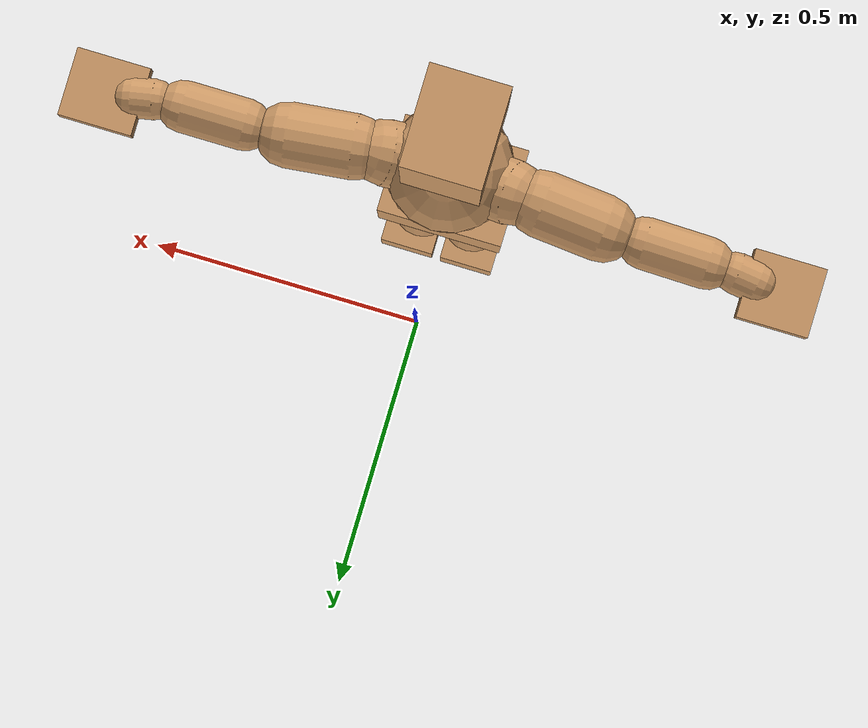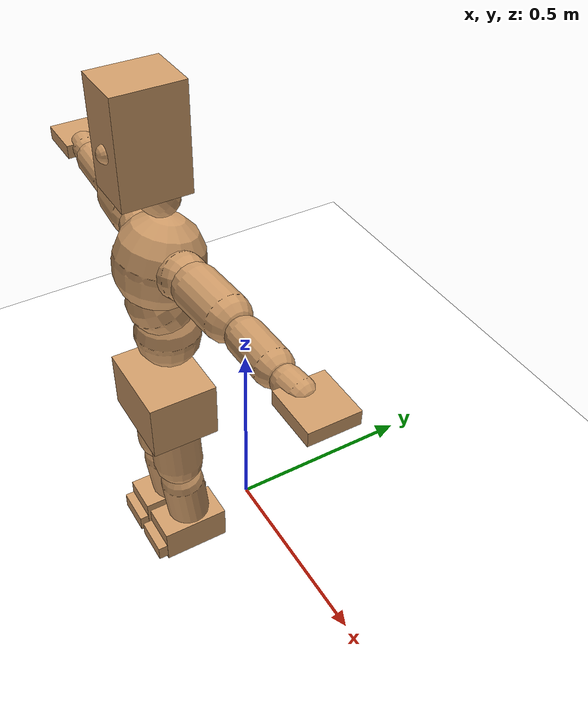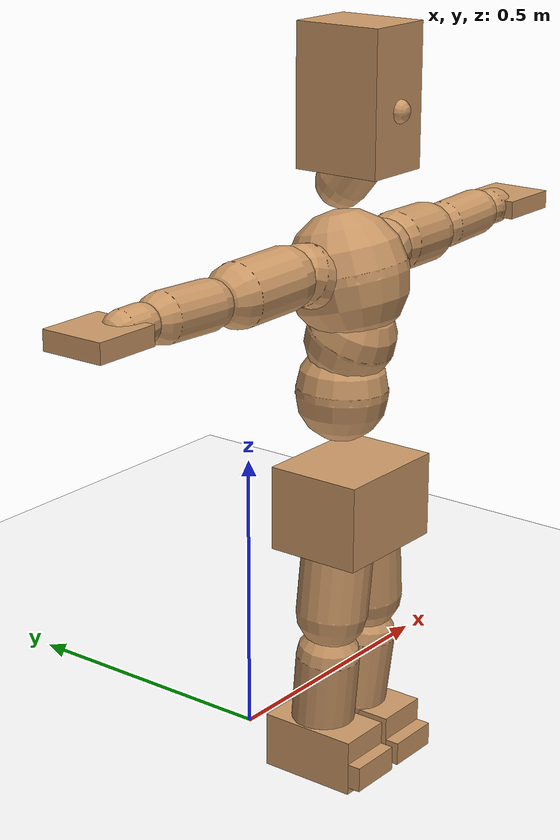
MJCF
<mujoco model="humanoid">
  <option integrator="implicitfast" />

  <visual>
    <global offwidth="1280" offheight="960" />
    <headlight active="1" ambient="0.34 0.34 0.34" diffuse="0.5 0.5 0.5" />
  </visual>

  <default>
    <joint damping="2" stiffness="2" armature="0.01" limited="true" solimplimit="0 .99 .01" />
    <geom condim="1" friction="0.7 0.005 0.0001" solimp=".99 .99 .003" solref="0.015 1" margin="0.001" rgba="0.8 0.6 .4 1" />
    <default class="smplcontact">
      <geom condim="3" friction="1. 0.005 0.0001" solref="0.015 1" solimp="0.98 0.98 0.001" priority="1" />
    </default>
    <default class="stiff_medium">
      <joint stiffness="10" />
    </default>
    <default class="stiff_medium_higher">
      <joint stiffness="50" />
    </default>
    <default class="stiff_high">
      <joint stiffness="100" />
    </default>
  </default>

  <asset>
    <texture type="skybox" builtin="gradient" rgb1="0.99 0.99 0.99" rgb2="0.608 0.828 0.892" width="100" />
    <texture builtin="flat" height="1278" mark="cross" markrgb="1 1 1" name="texgeom" random="0.01" rgb1="0.8 0.6 0.4" rgb2="0.8 0.6 0.4" type="cube" width="127" />
    <texture name="texplane" type="2d" builtin="checker" markrgb="1 1 1" rgb1="0.756 0.772 0.76" rgb2="0.6 0.6 0.6" width="100" height="100" />
    <material name="MatPlane" reflectance="0.5" texture="texplane" texrepeat="1 1" texuniform="true" />
    <material name="geom" texture="texgeom" texuniform="true" />
  </asset>

  <worldbody>
    <light name="tracking_light" pos="0 0 7" dir="0 0 -1" directional="true" cutoff="100" exponent="1" diffuse="1 1 1" specular="0.1 0.1 0.1" mode="trackcom" />
    <camera name="back" pos="0 3 2.4" xyaxes="-1 0 0 0 -1 2" mode="trackcom" />
    <camera name="side" pos="-3 0 2.4" xyaxes="0 -1 0 1 0 2" mode="trackcom" />
    <camera name="front_side" pos="-2.8 -2.8 0.8" xyaxes="0.5 -0.5 0 0.1 0.1 1" mode="trackcom" />
    <geom condim="3" name="floor" pos="0 0 0" rgba="1 1 1 1" size="100 100 .2" type="plane" material="MatPlane" />
    <body name="Pelvis" pos="-0.0018 -0.2233 0.49225" euler="90 0 0">
      <site name="Pelvis" size="0.01" />
      <freejoint name="Pelvis" />
      <geom type="box" pos="-0.0000 -0.0121 -0.0055" size="0.1069 0.0722 0.083" quat="1.0000 0.0000 0.0000 0.0000" density="3165.830099" name="Pelvis" />
      <body name="L_Hip" pos="0.03475 -0.0457 -0.0034">
        <joint name="L_Hip_x" type="hinge" pos="0 0 0" axis="1 0 0" stiffness="3.3281267346938783" range="-160.0 22.92" class="stiff_medium" damping="3.7390012674465325" armature="0.001866933509102771"/>
        <joint name="L_Hip_y" type="hinge" pos="0 0 0" axis="0 1 0" stiffness="3.37791" range="-70.0 70.0" class="stiff_medium" damping="4.005630916019097" armature="0.004750001934737157"/>
        <joint name="L_Hip_z" type="hinge" pos="0 0 0" axis="0 0 1" stiffness="3.3736477551020405" range="-28.65 90.0" class="stiff_medium" damping="2.5063841398267126" armature="0.0018620679787552054"/>
        <geom type="capsule" density="2040.816327" fromto="0.00345 -0.0375 -0.00045 0.0137 -0.1501 -0.0018" size="0.0615" name="L_Hip" />
        <body name="L_Knee" pos="0.01715 -0.1876 -0.00225">
          <joint name="L_Knee_x" type="hinge" pos="0 0 0" axis="1 0 0" range="-5.16 171.89" damping="2.2341138163124654" armature="0.002158215061835116" stiffness="0.7227130408163265"/>
          <joint name="L_Knee_y" type="hinge" pos="0 0 0" axis="0 1 0" range="-4.58 6.88" damping="3.4591258985845013" armature="0.005422024016158549" stiffness="0.6896382205818496"/>
          <joint name="L_Knee_z" type="hinge" pos="0 0 0" axis="0 0 1" range="-6.88 4.58" damping="2.248338952702008" armature="0.002131189565119327" stiffness="0.7412274770408163"/>
          <geom type="capsule" density="1234.567901" fromto="-0.00135 -0.0398 -0.00435 -0.00545 -0.1592 -0.0175" size="0.0541" name="L_Knee" />
          <body name="L_Ankle" pos="-0.0068 -0.199 -0.02185">
            <joint name="L_Ankle_x" type="hinge" pos="0 0 0" axis="1 0 0" range="-45.84 45.84" class="stiff_medium" damping="3.0200432285450516" armature="0.005067033945711566" stiffness="5.0"/>
            <joint name="L_Ankle_y" type="hinge" pos="0 0 0" axis="0 1 0" range="-74.48 22.92" class="stiff_medium" damping="1.537123292382135" armature="0.005250551146630431" stiffness="5.0"/>
            <joint name="L_Ankle_z" type="hinge" pos="0 0 0" axis="0 0 1" range="-4.58 4.58" class="stiff_medium" damping="3.407863702828024" armature="0.00645196389836263" stiffness="5.0"/>
            <geom type="box" pos="0.01165 -0.01195 0.0121" size="0.0483 0.0464 0.085" quat="1.0000 0.0000 0.0000 0.0000" density="449.071558" name="L_Ankle" class="smplcontact" />
            <body name="L_Toe" pos="0.0132 -0.0279 0.05965">
              <joint name="L_Toe_x" type="hinge" pos="0 0 0" axis="1 0 0" range="-91.67 22.92" armature="0.007148590664291283" damping="1.1957082139294086" stiffness="1.0"/>
              <joint name="L_Toe_y" type="hinge" pos="0 0 0" axis="0 1 0" range="-4.58 4.58" armature="0.007990951927082678" damping="1.2641955487251706" stiffness="1.0"/>
              <joint name="L_Toe_z" type="hinge" pos="0 0 0" axis="0 0 1" range="-4.58 4.58" armature="0.009694161060559706" damping="1.3924195531921912" stiffness="1.0"/>
              <geom type="box" pos="-0.0015 0.00275 0.0124" size="0.0478 0.02 0.0496" quat="1.0000 0.0000 0.0000 0.0000" density="423.206892" name="L_Toe" class="smplcontact" />
            </body>
          </body>
        </body>
      </body>
      <body name="R_Hip" pos="-0.03385 -0.04525 -0.00215">
        <joint name="R_Hip_x" type="hinge" pos="0 0 0" axis="1 0 0" stiffness="3.3281267346938783" range="-160.0 22.92" class="stiff_medium" damping="3.7390012674465325" armature="0.001866933509102771"/>
        <joint name="R_Hip_y" type="hinge" pos="0 0 0" axis="0 1 0" stiffness="3.37791" range="-70.0 70.0" class="stiff_medium" damping="4.005630916019097" armature="0.004750001934737157"/>
        <joint name="R_Hip_z" type="hinge" pos="0 0 0" axis="0 0 1" stiffness="3.3736477551020405" range="-90.0 28.65" class="stiff_medium" damping="2.5063841398267126" armature="0.0018620679787552054"/>
        <geom type="capsule" density="2040.816327" fromto="-0.00385 -0.03825 -0.0009 -0.0153 -0.15305 -0.00355" size="0.0606" name="R_Hip" />
        <body name="R_Knee" pos="-0.01915 -0.1913 -0.00445">
          <joint name="R_Knee_x" type="hinge" pos="0 0 0" axis="1 0 0" range="-5.16 171.89" damping="2.2341138163124654" armature="0.002158215061835116" stiffness="0.7227130408163265"/>
          <joint name="R_Knee_y" type="hinge" pos="0 0 0" axis="0 1 0" range="-6.88 4.58" damping="3.4591258985845013" armature="0.005422024016158549" stiffness="0.6896382205818496"/>
          <joint name="R_Knee_z" type="hinge" pos="0 0 0" axis="0 0 1" range="-4.58 6.88" damping="2.248338952702008" armature="0.002131189565119327" stiffness="0.7412274770408163"/>
          <geom type="capsule" density="1234.567901" fromto="0.0016 -0.03985 -0.00425 0.0063 -0.15935 -0.0169" size="0.0541" name="R_Knee" />
          <body name="R_Ankle" pos="0.0079 -0.1992 -0.02115">
            <joint name="R_Ankle_x" type="hinge" pos="0 0 0" axis="1 0 0" range="-45.84 45.84" class="stiff_medium" damping="3.0200432285450516" armature="0.005067033945711566" stiffness="5.0"/>
            <joint name="R_Ankle_y" type="hinge" pos="0 0 0" axis="0 1 0" range="-22.92 74.48" class="stiff_medium" damping="1.537123292382135" armature="0.005250551146630431" stiffness="5.0"/>
            <joint name="R_Ankle_z" type="hinge" pos="0 0 0" axis="0 0 1" range="-4.58 4.58" class="stiff_medium" damping="3.407863702828024" armature="0.00645196389836263" stiffness="5.0"/>
            <geom type="box" pos="-0.0106 -0.0087 0.0128" size="0.0483 0.0478 0.0865" quat="1.0000 0.0000 0.0000 0.0000" density="434.700981" name="R_Ankle" class="smplcontact" />
            <body name="R_Toe" pos="-0.0127 -0.02405 0.06165">
              <joint name="R_Toe_x" type="hinge" pos="0 0 0" axis="1 0 0" range="-91.67 22.92" armature="0.007148590664291283" damping="1.1957082139294086" stiffness="1.0"/>
              <joint name="R_Toe_y" type="hinge" pos="0 0 0" axis="0 1 0" range="-4.58 4.58" armature="0.007990951927082678" damping="1.2641955487251706" stiffness="1.0"/>
              <joint name="R_Toe_z" type="hinge" pos="0 0 0" axis="0 0 1" range="-4.58 4.58" armature="0.009694161060559706" damping="1.3924195531921912" stiffness="1.0"/>
              <geom type="box" pos="0.0021 0.00225 0.01135" size="0.0479 0.0216 0.0493" quat="1.0000 0.0000 0.0000 0.0000" density="407.384095" name="R_Toe" class="smplcontact" />
            </body>
          </body>
        </body>
      </body>
      <body name="Torso" pos="-0.0025 0.109 -0.0267">
        <joint name="Torso_x" type="hinge" pos="0 0 0" axis="1 0 0" range="-25.78 57.3" class="stiff_medium" damping="13.296564125699916" armature="0.008717287887859705" stiffness="9.01394612244898"/>
        <joint name="Torso_y" type="hinge" pos="0 0 0" axis="0 1 0" range="-57.3 57.3" class="stiff_high" damping="11.857975578739207" armature="0.0038447211811141577" stiffness="91.43158775510203"/>
        <joint name="Torso_z" type="hinge" pos="0 0 0" axis="0 0 1" range="-34.38 34.38" class="stiff_high" damping="16.193220219297856" armature="0.007045583299802342" stiffness="93.0442413043478"/>
        <geom type="capsule" density="2040.816327" fromto="0.0025 0.0608 0.0005 0.003 0.0743 0.0006" size="0.0769" name="Torso" />
        <body name="Spine" pos="0.0055 0.1352 0.0011">
          <joint name="Spine_x" type="hinge" pos="0 0 0" axis="1 0 0" stiffness="8.855082083333333" range="-25.78 57.3" class="stiff_medium" damping="13.076797677454" armature="0.008582774445870424"/>
          <joint name="Spine_y" type="hinge" pos="0 0 0" axis="0 1 0" stiffness="8.966550425531915" range="-57.3 57.3" class="stiff_high" damping="4.670538649446805" armature="0.0038012687155206805"/>
          <joint name="Spine_z" type="hinge" pos="0 0 0" axis="0 0 1" stiffness="17.399179999999998" range="-34.38 34.38" class="stiff_high" damping="8.612389288095056" armature="0.005920876830729192"/>
          <geom type="capsule" density="2040.816327" fromto="0.0007 0.0238 0.0114 0.0008 0.0291 0.014" size="0.0755" name="Spine" />
          <body name="Chest" pos="0.0015 0.0529 0.0254">
            <joint name="Chest_x" type="hinge" pos="0 0 0" axis="1 0 0" stiffness="8.445605217391304" range="-25.78 57.3" class="stiff_medium" damping="12.725283601188018" armature="0.008521609816255434"/>
            <joint name="Chest_y" type="hinge" pos="0 0 0" axis="0 1 0" stiffness="7.416513142857141" range="-57.3 57.3" class="stiff_high" damping="4.235867490218071" armature="0.003780114777548562"/>
            <joint name="Chest_z" type="hinge" pos="0 0 0" axis="0 0 1" stiffness="17.461715111111108" range="-34.38 34.38" class="stiff_high" damping="8.265316118618488" armature="0.005433748608980236"/>
            <geom type="capsule" density="2040.816327" fromto="-0.0009 0.0682 -0.0173 -0.001 0.0833 -0.0212" size="0.1002" name="Chest" />
            <body name="Neck" pos="-0.0028 0.2139 -0.0429">
              <joint name="Neck_x" type="hinge" pos="0 0 0" axis="1 0 0" range="-28.65 57.3" class="stiff_medium_higher" damping="10.000000000000004" armature="0.01000000000000001" stiffness="50.0"/>
              <joint name="Neck_y" type="hinge" pos="0 0 0" axis="0 1 0" range="-40.11 40.11" class="stiff_medium_higher" damping="10.0" armature="0.01" stiffness="50.0"/>
              <joint name="Neck_z" type="hinge" pos="0 0 0" axis="0 0 1" range="-40.11 40.11" class="stiff_medium_higher" damping="9.999999999999996" armature="0.009999999999999993" stiffness="50.0"/>
              <geom type="capsule" density="1000" fromto="0.001 0.013 0.0103 0.0041 0.052 0.0411" size="0.0436" name="Neck" />
              <body name="Head" pos="0.0052 0.065 0.0513">
                <joint name="Head_x" type="hinge" pos="0 0 0" axis="1 0 0" range="-28.65 57.3" class="stiff_medium_higher" damping="2.0000000000000067" armature="0.01000000000000007" stiffness="50.0"/>
                <joint name="Head_y" type="hinge" pos="0 0 0" axis="0 1 0" range="-40.11 40.11" class="stiff_medium_higher" damping="1.9999999999999998" armature="0.009999999999999998" stiffness="50.0"/>
                <joint name="Head_z" type="hinge" pos="0 0 0" axis="0 0 1" range="-40.11 40.11" class="stiff_medium_higher" damping="2.0000000000000027" armature="0.01000000000000003" stiffness="50.0"/>
                <geom type="box" pos="-0.0042 0.0876 -0.0116" size="0.0606 0.1154 0.076" quat="1.0000 0.0000 0.0000 0.0000" density="1018.069894" name="Head" />
                <geom type="capsule" name="nose" size="0.02 0.01" pos="0 0.07 0.05" quat="1 0 0 0" mass="0" contype="0" conaffinity="0" />
              </body>
            </body>
            <body name="L_Thorax" pos="0.052205 0.0806262 -0.0225912">
              <joint name="L_Thorax_x" type="hinge" pos="0 0 0" axis="1 0 0" range="-10.89 4.58" class="stiff_medium_higher" damping="10.752161019344726" armature="0.005492534491244045" stiffness="26.310478061224497"/>
              <joint name="L_Thorax_y" type="hinge" pos="0 0 0" axis="0 1 0" range="-28.65 17.19" class="stiff_medium_higher" damping="8.656507675839675" armature="0.0035990909186137975" stiffness="26.025712755102038"/>
              <joint name="L_Thorax_z" type="hinge" pos="0 0 0" axis="0 0 1" range="-31.51 40.11" class="stiff_medium_higher" damping="8.654936190408645" armature="0.0035973494554525543" stiffness="26.02885867346939"/>
              <geom type="capsule" density="1000" fromto="0.0120575 0.00404125 -0.0011925 0.04823 0.016165 -0.00470375" size="0.0521" name="L_Thorax" />
              <body name="L_Shoulder" pos="0.0602875 0.0202062 -0.00589625">
                <joint name="L_Shoulder_x" type="hinge" pos="0 0 0" axis="1 0 0" range="-97.4 97.4" class="stiff_medium" damping="3.4355706113714604" armature="0.00618147417805881" stiffness="5.3039961224489796"/>
                <joint name="L_Shoulder_y" type="hinge" pos="0 0 0" axis="0 1 0" range="-108.86 80.21" class="stiff_medium" damping="2.619467278569037" armature="0.00364693025105719" stiffness="5.226319999999999"/>
                <joint name="L_Shoulder_z" type="hinge" pos="0 0 0" axis="0 0 1" range="-97.4 85.94" class="stiff_medium" damping="2.619734916927622" armature="0.0036444798930498415" stiffness="5.230902653061225"/>
                <geom type="capsule" density="1000" fromto="0.0343837 -0.0017225 -0.00364375 0.137601 -0.0067575 -0.014575" size="0.0517" name="L_Shoulder" />
                <body name="L_Elbow" pos="0.171985 -0.00848 -0.0182187">
                  <joint name="L_Elbow_x" type="hinge" pos="0 0 0" axis="1 0 0" range="-17.19 4.58" damping="3.1785577743547435" armature="0.007393662378869007" stiffness="1.0931772653061227"/>
                  <joint name="L_Elbow_y" type="hinge" pos="0 0 0" axis="0 1 0" range="-180.0 17.19" damping="2.3033030607353284" armature="0.003885042260915374" stiffness="1.0924370204081633"/>
                  <joint name="L_Elbow_z" type="hinge" pos="0 0 0" axis="0 0 1" range="-100.84 4.58" damping="2.3008114328593745" armature="0.0038721783452337244" stiffness="1.0936961632653062"/>
                  <geom type="capsule" density="1000" fromto="0.0329925 0.0011925 -0.0001325 0.132102 0.00477 -0.00059625" size="0.0405" name="L_Elbow" />
                  <body name="L_Wrist" pos="0.165095 0.0059625 -0.000795">
                    <joint name="L_Wrist_x" type="hinge" pos="0 0 0" axis="1 0 0" range="-180.0 22.92" armature="0.008001427855743294" damping="1.4109622696560111" stiffness="1.2440370408163264"/>
                    <joint name="L_Wrist_y" type="hinge" pos="0 0 0" axis="0 1 0" range="-17.19 17.19" armature="0.004879471429003496" damping="1.096564444697455" stiffness="1.2321555714285712"/>
                    <joint name="L_Wrist_z" type="hinge" pos="0 0 0" axis="0 0 1" range="-22.92 22.92" armature="0.004698864868438911" damping="1.0781698402208963" stiffness="1.2369478979591837"/>
                    <geom type="capsule" density="1000" fromto="0.01113 -0.00106 -0.0019875 0.04452 -0.00430625 -0.00795" size="0.0318" name="L_Wrist" class="smplcontact" />
                    <body name="L_Hand" pos="0.05565 -0.0054325 -0.00987125">
                      <joint name="L_Hand_x" type="hinge" pos="0 0 0" axis="1 0 0" range="-17.19 17.19" armature="0.0097555529962039" damping="1.6078618449167779" stiffness="1.3249990612244895"/>
                      <joint name="L_Hand_y" type="hinge" pos="0 0 0" axis="0 1 0" range="-51.57 51.57" armature="0.007043747166286172" damping="1.3662326477640545" stiffness="1.3249990408163264"/>
                      <joint name="L_Hand_z" type="hinge" pos="0 0 0" axis="0 0 1" range="-91.67 91.67" armature="0.006320878329522917" damping="1.2942300773617907" stiffness="1.3249989999999998"/>
                      <geom type="box" pos="0.0326612 0.0006625 -0.0038425" size="0.0585 0.0158 0.0538" quat="1.0000 0.0000 0.0000 0.0000" density="400.552564" name="L_Hand" class="smplcontact" />
                    </body>
                  </body>
                </body>
              </body>
            </body>
            <body name="R_Thorax" pos="-0.0541925 0.078705 -0.0255725">
              <joint name="R_Thorax_x" type="hinge" pos="0 0 0" axis="1 0 0" range="-10.89 4.58" class="stiff_medium_higher" damping="10.752161019344726" armature="0.005492534491244045" stiffness="26.310478061224497"/>
              <joint name="R_Thorax_y" type="hinge" pos="0 0 0" axis="0 1 0" range="-17.19 28.65" class="stiff_medium_higher" damping="8.656507675839675" armature="0.0035990909186137975" stiffness="26.025712755102038"/>
              <joint name="R_Thorax_z" type="hinge" pos="0 0 0" axis="0 0 1" range="-40.11 31.51" class="stiff_medium_higher" damping="8.654936190408645" armature="0.0035973494554525543" stiffness="26.02885867346939"/>
              <geom type="capsule" density="1000" fromto="-0.01272 0.00430625 -0.0011925 -0.05088 0.017225 -0.00483625" size="0.0511" name="R_Thorax" />
              <body name="R_Shoulder" pos="-0.0636 0.0215975 -0.00602875">
                <joint name="R_Shoulder_x" type="hinge" pos="0 0 0" axis="1 0 0" range="-97.4 97.4" class="stiff_medium" damping="3.4355706113714604" armature="0.00618147417805881" stiffness="5.3039961224489796"/>
                <joint name="R_Shoulder_y" type="hinge" pos="0 0 0" axis="0 1 0" range="-80.21 108.86" class="stiff_medium" damping="2.619467278569037" armature="0.00364693025105719" stiffness="5.226319999999999"/>
                <joint name="R_Shoulder_z" type="hinge" pos="0 0 0" axis="0 0 1" range="-85.94 97.4" class="stiff_medium" damping="2.619734916927622" armature="0.0036444798930498415" stiffness="5.230902653061225"/>
                <geom type="capsule" density="1000" fromto="-0.0335888 -0.00178875 -0.00284875 -0.134488 -0.00708875 -0.0113288" size="0.0531" name="R_Shoulder" />
                <body name="R_Elbow" pos="-0.168076 -0.00881125 -0.0141775">
                  <joint name="R_Elbow_x" type="hinge" pos="0 0 0" axis="1 0 0" range="-17.19 4.58" damping="3.1785577743547435" armature="0.007393662378869007" stiffness="1.0931772653061227"/>
                  <joint name="R_Elbow_y" type="hinge" pos="0 0 0" axis="0 1 0" range="-17.19 180.0" damping="2.3033030607353284" armature="0.003885042260915374" stiffness="1.0924370204081633"/>
                  <joint name="R_Elbow_z" type="hinge" pos="0 0 0" axis="0 0 1" range="-4.58 100.84" damping="2.3008114328593745" armature="0.0038721783452337244" stiffness="1.0936961632653062"/>
                  <geom type="capsule" density="1000" fromto="-0.0338538 0.00106 -0.00072875 -0.135282 0.0041075 -0.002915" size="0.0408" name="R_Elbow" />
                  <body name="R_Wrist" pos="-0.169136 0.0051675 -0.00371">
                    <joint name="R_Wrist_x" type="hinge" pos="0 0 0" axis="1 0 0" range="-180.0 22.92" armature="0.008001427855743294" damping="1.4109622696560111" stiffness="1.2440370408163264"/>
                    <joint name="R_Wrist_y" type="hinge" pos="0 0 0" axis="0 1 0" range="-17.19 17.19" armature="0.004879471429003496" damping="1.096564444697455" stiffness="1.2321555714285712"/>
                    <joint name="R_Wrist_z" type="hinge" pos="0 0 0" axis="0 0 1" range="-22.92 22.92" armature="0.004698864868438911" damping="1.0781698402208963" stiffness="1.2369478979591837"/>
                    <geom type="capsule" density="1000" fromto="-0.0111962 -0.000795 -0.00139125 -0.0448512 -0.00324625 -0.00549875" size="0.0326" name="R_Wrist" class="smplcontact" />
                    <body name="R_Hand" pos="-0.0560475 -0.00404125 -0.00682375">
                      <joint name="R_Hand_x" type="hinge" pos="0 0 0" axis="1 0 0" range="-17.19 17.19" armature="0.0097555529962039" damping="1.6078618449167779" stiffness="1.3249990612244895"/>
                      <joint name="R_Hand_y" type="hinge" pos="0 0 0" axis="0 1 0" range="-51.57 51.57" armature="0.007043747166286172" damping="1.3662326477640545" stiffness="1.3249990408163264"/>
                      <joint name="R_Hand_z" type="hinge" pos="0 0 0" axis="0 0 1" range="-91.67 91.67" armature="0.006320878329522917" damping="1.2942300773617907" stiffness="1.3249989999999998"/>
                      <geom type="box" pos="-0.0306075 -0.00059625 -0.00523375" size="0.0569 0.0164 0.0546" quat="1.0000 0.0000 0.0000 0.0000" density="403.679611" name="R_Hand" class="smplcontact" />
                    </body>
                  </body>
                </body>
              </body>
            </body>
          </body>
        </body>
      </body>
    </body>
  </worldbody>
  <actuator>
    <general name="L_Hip_x" joint="L_Hip_x" biastype="affine" gainprm="95.62708680036044" biasprm="-71.66280919852072 -59.9062812244898 -0.4985335023262043" ctrllimited="true" ctrlrange="-1 1" forcerange="-119.8125624489796 119.8125624489796" />
    <general name="L_Hip_y" joint="L_Hip_y" biastype="affine" gainprm="74.28412068341248" biasprm="0.0 -60.80238 -0.8011261832038193" ctrllimited="true" ctrlrange="-1 1" forcerange="-121.60476 121.60476" />
    <general name="L_Hip_z" joint="L_Hip_z" biastype="affine" gainprm="62.8763546966517" biasprm="32.51128833240271 -60.72565959183673 -0.5012768279653426" ctrllimited="true" ctrlrange="-1 1" forcerange="-121.45131918367346 121.45131918367346" />
    <general name="L_Knee_x" joint="L_Knee_x" biastype="affine" gainprm="100.49667747567948" biasprm="94.63886492809961 -65.04417367346939 -0.5585284540781164" ctrllimited="true" ctrlrange="-1 1" forcerange="-130.08834734693878 130.08834734693878" />
    <general name="L_Knee_y" joint="L_Knee_y" biastype="affine" gainprm="6.207201182643047" biasprm="1.2457733612634387 -62.06743985236647 -0.8647814746461253" ctrllimited="true" ctrlrange="-1 1" forcerange="-124.13487970473294 124.13487970473294" />
    <general name="L_Knee_z" joint="L_Knee_z" biastype="affine" gainprm="6.671538692002082" biasprm="-1.3389650079934372 -66.71047293367346 -0.562084738175502" ctrllimited="true" ctrlrange="-1 1" forcerange="-133.42094586734692 133.42094586734692" />
    <general name="L_Ankle_x" joint="L_Ankle_x" biastype="affine" gainprm="36.002651810139035" biasprm="0.0 -45.0 -1.0066810761816838" ctrllimited="true" ctrlrange="-1 1" forcerange="-90.0 90.0" />
    <general name="L_Ankle_y" joint="L_Ankle_y" biastype="affine" gainprm="38.24889055745574" biasprm="-20.24756465238622 -45.0 -1.02474886158809" ctrllimited="true" ctrlrange="-1 1" forcerange="-90.0 90.0" />
    <general name="L_Ankle_z" joint="L_Ankle_z" biastype="affine" gainprm="3.5971235883603128" biasprm="0.0 -45.0 -1.1359545676093414" ctrllimited="true" ctrlrange="-1 1" forcerange="-90.0 90.0" />
    <general name="L_Toe_x" joint="L_Toe_x" biastype="affine" gainprm="35.99951021748544" biasprm="-21.598449493429825 -36.0 -0.4782832855717635" ctrllimited="true" ctrlrange="-1 1" forcerange="-72.0 72.0" />
    <general name="L_Toe_y" joint="L_Toe_y" biastype="affine" gainprm="2.8776988706882505" biasprm="0.0 -36.0 -0.5056782194900683" ctrllimited="true" ctrlrange="-1 1" forcerange="-72.0 72.0" />
    <general name="L_Toe_z" joint="L_Toe_z" biastype="affine" gainprm="2.8776988706882505" biasprm="0.0 -36.0 -0.5569678212768765" ctrllimited="true" ctrlrange="-1 1" forcerange="-72.0 72.0" />
    <general name="R_Hip_x" joint="R_Hip_x" biastype="affine" gainprm="95.62708680036044" biasprm="-71.66280919852072 -59.9062812244898 -0.4985335023262043" ctrllimited="true" ctrlrange="-1 1" forcerange="-119.8125624489796 119.8125624489796" />
    <general name="R_Hip_y" joint="R_Hip_y" biastype="affine" gainprm="74.28412068341248" biasprm="0.0 -60.80238 -0.8011261832038193" ctrllimited="true" ctrlrange="-1 1" forcerange="-121.60476 121.60476" />
    <general name="R_Hip_z" joint="R_Hip_z" biastype="affine" gainprm="62.8763546966517" biasprm="-32.51128833240271 -60.72565959183673 -0.5012768279653426" ctrllimited="true" ctrlrange="-1 1" forcerange="-121.45131918367346 121.45131918367346" />
    <general name="R_Knee_x" joint="R_Knee_x" biastype="affine" gainprm="100.49667747567948" biasprm="94.63886492809961 -65.04417367346939 -0.5585284540781164" ctrllimited="true" ctrlrange="-1 1" forcerange="-130.08834734693878 130.08834734693878" />
    <general name="R_Knee_y" joint="R_Knee_y" biastype="affine" gainprm="6.207201182643047" biasprm="-1.2457733612634387 -62.06743985236647 -0.8647814746461253" ctrllimited="true" ctrlrange="-1 1" forcerange="-124.13487970473294 124.13487970473294" />
    <general name="R_Knee_z" joint="R_Knee_z" biastype="affine" gainprm="6.671538692002082" biasprm="1.3389650079934372 -66.71047293367346 -0.562084738175502" ctrllimited="true" ctrlrange="-1 1" forcerange="-133.42094586734692 133.42094586734692" />
    <general name="R_Ankle_x" joint="R_Ankle_x" biastype="affine" gainprm="36.002651810139035" biasprm="0.0 -45.0 -1.0066810761816838" ctrllimited="true" ctrlrange="-1 1" forcerange="-90.0 90.0" />
    <general name="R_Ankle_y" joint="R_Ankle_y" biastype="affine" gainprm="38.24889055745574" biasprm="20.24756465238622 -45.0 -1.02474886158809" ctrllimited="true" ctrlrange="-1 1" forcerange="-90.0 90.0" />
    <general name="R_Ankle_z" joint="R_Ankle_z" biastype="affine" gainprm="3.5971235883603128" biasprm="0.0 -45.0 -1.1359545676093414" ctrllimited="true" ctrlrange="-1 1" forcerange="-90.0 90.0" />
    <general name="R_Toe_x" joint="R_Toe_x" biastype="affine" gainprm="35.99951021748544" biasprm="-21.598449493429825 -36.0 -0.4782832855717635" ctrllimited="true" ctrlrange="-1 1" forcerange="-72.0 72.0" />
    <general name="R_Toe_y" joint="R_Toe_y" biastype="affine" gainprm="2.8776988706882505" biasprm="0.0 -36.0 -0.5056782194900683" ctrllimited="true" ctrlrange="-1 1" forcerange="-72.0 72.0" />
    <general name="R_Toe_z" joint="R_Toe_z" biastype="affine" gainprm="2.8776988706882505" biasprm="0.0 -36.0 -0.5569678212768765" ctrllimited="true" ctrlrange="-1 1" forcerange="-72.0 72.0" />
    <general name="Torso_x" joint="Torso_x" biastype="affine" gainprm="156.84477639727098" biasprm="59.505866057318 -216.33470693877553 -3.5457504335199777" ctrllimited="true" ctrlrange="-1 1" forcerange="-324.5020604081633 324.5020604081633" />
    <general name="Torso_y" joint="Torso_y" biastype="affine" gainprm="219.45197455967397" biasprm="0.0 -219.43581061224486 -2.3715951157478417" ctrllimited="true" ctrlrange="-1 1" forcerange="-329.1537159183673 329.1537159183673" />
    <general name="Torso_z" joint="Torso_z" biastype="affine" gainprm="133.99357690475964" biasprm="0.0 -223.30617913043474 -3.238644043859571" ctrllimited="true" ctrlrange="-1 1" forcerange="-334.9592686956521 334.9592686956521" />
    <general name="Spine_x" joint="Spine_x" biastype="affine" gainprm="154.08050486134445" biasprm="58.457119802955894 -212.52197 -3.4871460473210667" ctrllimited="true" ctrlrange="-1 1" forcerange="-318.782955 318.782955" />
    <general name="Spine_y" joint="Spine_y" biastype="affine" gainprm="215.21306193898633" biasprm="0.0 -215.19721021276595 -2.3352693247234027" ctrllimited="true" ctrlrange="-1 1" forcerange="-322.7958153191489 322.7958153191489" />
    <general name="Spine_z" joint="Spine_z" biastype="affine" gainprm="125.28332386438697" biasprm="0.0 -208.79016 -2.8707964293650186" ctrllimited="true" ctrlrange="-1 1" forcerange="-313.18523999999996 313.18523999999996" />
    <general name="Chest_x" joint="Chest_x" biastype="affine" gainprm="146.95551136725376" biasprm="55.753944611168 -202.69452521739132 -3.3934089603168047" ctrllimited="true" ctrlrange="-1 1" forcerange="-304.04178782608693 304.04178782608693" />
    <general name="Chest_y" joint="Chest_y" biastype="affine" gainprm="178.00942688507038" biasprm="0.0 -177.9963154285714 -2.1179337451090356" ctrllimited="true" ctrlrange="-1 1" forcerange="-266.9944731428571 266.9944731428571" />
    <general name="Chest_z" joint="Chest_z" biastype="affine" gainprm="125.7336098306353" biasprm="0.0 -209.5405813333333 -2.7551053728728294" ctrllimited="true" ctrlrange="-1 1" forcerange="-314.31087199999996 314.31087199999996" />
    <general name="Neck_x" joint="Neck_x" biastype="affine" gainprm="27.00198885760427" biasprm="9.000662952534757 -36.0 -0.8000000000000004" ctrllimited="true" ctrlrange="-1 1" forcerange="-72.0 72.0" />
    <general name="Neck_y" joint="Neck_y" biastype="affine" gainprm="25.20185626709732" biasprm="0.0 -36.0 -0.8" ctrllimited="true" ctrlrange="-1 1" forcerange="-72.0 72.0" />
    <general name="Neck_z" joint="Neck_z" biastype="affine" gainprm="25.20185626709732" biasprm="0.0 -36.0 -0.7999999999999998" ctrllimited="true" ctrlrange="-1 1" forcerange="-72.0 72.0" />
    <general name="Head_x" joint="Head_x" biastype="affine" gainprm="18.001325905069514" biasprm="6.000441968356505 -24.0 -0.8000000000000027" ctrllimited="true" ctrlrange="-1 1" forcerange="-48.0 48.0" />
    <general name="Head_y" joint="Head_y" biastype="affine" gainprm="16.801237511398213" biasprm="0.0 -24.0 -0.7999999999999999" ctrllimited="true" ctrlrange="-1 1" forcerange="-48.0 48.0" />
    <general name="Head_z" joint="Head_z" biastype="affine" gainprm="16.801237511398213" biasprm="0.0 -24.0 -0.8000000000000012" ctrllimited="true" ctrlrange="-1 1" forcerange="-48.0 48.0" />
    <general name="L_Thorax_x" joint="L_Thorax_x" biastype="affine" gainprm="8.524671780005175" biasprm="-3.4770962464015946 -63.14514734693879 -0.8601728815475781" ctrllimited="true" ctrlrange="-1 1" forcerange="-126.29029469387758 126.29029469387758" />
    <general name="L_Thorax_y" joint="L_Thorax_y" biastype="affine" gainprm="24.98652465153687" biasprm="-6.246631162884218 -62.461710612244886 -0.692520614067174" ctrllimited="true" ctrlrange="-1 1" forcerange="-124.92342122448977 124.92342122448977" />
    <general name="L_Thorax_z" joint="L_Thorax_z" biastype="affine" gainprm="39.04343825747016" biasprm="4.688265414887508 -62.46926081632654 -0.6923948952326916" ctrllimited="true" ctrlrange="-1 1" forcerange="-124.93852163265308 124.93852163265308" />
    <general name="L_Shoulder_x" joint="L_Shoulder_x" biastype="affine" gainprm="43.279353003673734" biasprm="0.0 -25.459181387755102 -0.9161521630323896" ctrllimited="true" ctrlrange="-1 1" forcerange="-50.918362775510204 50.918362775510204" />
    <general name="L_Shoulder_y" joint="L_Shoulder_y" biastype="affine" gainprm="41.39112503423586" biasprm="-6.272045973612193 -25.086336 -0.6985246076184098" ctrllimited="true" ctrlrange="-1 1" forcerange="-50.172672 50.172672" />
    <general name="L_Shoulder_z" joint="L_Shoulder_z" biastype="affine" gainprm="40.171909368365355" biasprm="-2.511018224945282 -25.108332734693878 -0.6985959778473658" ctrllimited="true" ctrlrange="-1 1" forcerange="-50.216665469387756 50.216665469387756" />
    <general name="L_Elbow_x" joint="L_Elbow_x" biastype="affine" gainprm="7.476509558353197" biasprm="-4.330674576519699 -39.35438155102042 -0.508569243896759" ctrllimited="true" ctrlrange="-1 1" forcerange="-78.70876310204083 78.70876310204083" />
    <general name="L_Elbow_y" joint="L_Elbow_y" biastype="affine" gainprm="67.67545257136767" biasprm="-55.87626367028943 -39.327732734693875 -0.36852848971765256" ctrllimited="true" ctrlrange="-1 1" forcerange="-78.65546546938775 78.65546546938775" />
    <general name="L_Elbow_z" joint="L_Elbow_z" biastype="affine" gainprm="36.22176204255759" biasprm="-33.07443382865295 -39.373061877551024 -0.36812982925749993" ctrllimited="true" ctrlrange="-1 1" forcerange="-78.74612375510205 78.74612375510205" />
    <general name="L_Wrist_x" joint="L_Wrist_x" biastype="affine" gainprm="13.217727298647333" biasprm="-10.231818470685607 -7.464222244897958 -0.5643849078624045" ctrllimited="true" ctrlrange="-1 1" forcerange="-14.928444489795917 14.928444489795917" />
    <general name="L_Wrist_y" joint="L_Wrist_y" biastype="affine" gainprm="2.2180434007032876" biasprm="0.0 -7.392933428571427 -0.438625777878982" ctrllimited="true" ctrlrange="-1 1" forcerange="-14.785866857142855 14.785866857142855" />
    <general name="L_Wrist_z" joint="L_Wrist_z" biastype="affine" gainprm="2.9688936318338586" biasprm="0.0 -7.421687387755102 -0.43126793608835856" ctrllimited="true" ctrlrange="-1 1" forcerange="-14.843374775510204 14.843374775510204" />
    <general name="L_Hand_x" joint="L_Hand_x" biastype="affine" gainprm="2.38517399250132" biasprm="0.0 -7.949994367346937 -0.6431447379667112" ctrllimited="true" ctrlrange="-1 1" forcerange="-15.899988734693874 15.899988734693874" />
    <general name="L_Hand_y" joint="L_Hand_y" biastype="affine" gainprm="7.155521867291758" biasprm="0.0 -7.949994244897958 -0.5464930591056218" ctrllimited="true" ctrlrange="-1 1" forcerange="-15.899988489795916 15.899988489795916" />
    <general name="L_Hand_z" joint="L_Hand_z" biastype="affine" gainprm="12.7195398365005" biasprm="0.0 -7.9499939999999985 -0.5176920309447163" ctrllimited="true" ctrlrange="-1 1" forcerange="-15.899987999999997 15.899987999999997" />
    <general name="R_Thorax_x" joint="R_Thorax_x" biastype="affine" gainprm="8.524671780005175" biasprm="-3.4770962464015946 -63.14514734693879 -0.8601728815475781" ctrllimited="true" ctrlrange="-1 1" forcerange="-126.29029469387758 126.29029469387758" />
    <general name="R_Thorax_y" joint="R_Thorax_y" biastype="affine" gainprm="24.98652465153687" biasprm="6.246631162884214 -62.461710612244886 -0.692520614067174" ctrllimited="true" ctrlrange="-1 1" forcerange="-124.92342122448977 124.92342122448977" />
    <general name="R_Thorax_z" joint="R_Thorax_z" biastype="affine" gainprm="39.04343825747016" biasprm="-4.688265414887508 -62.46926081632654 -0.6923948952326916" ctrllimited="true" ctrlrange="-1 1" forcerange="-124.93852163265308 124.93852163265308" />
    <general name="R_Shoulder_x" joint="R_Shoulder_x" biastype="affine" gainprm="43.279353003673734" biasprm="0.0 -25.459181387755102 -0.9161521630323896" ctrllimited="true" ctrlrange="-1 1" forcerange="-50.918362775510204 50.918362775510204" />
    <general name="R_Shoulder_y" joint="R_Shoulder_y" biastype="affine" gainprm="41.39112503423586" biasprm="6.272045973612193 -25.086336 -0.6985246076184098" ctrllimited="true" ctrlrange="-1 1" forcerange="-50.172672 50.172672" />
    <general name="R_Shoulder_z" joint="R_Shoulder_z" biastype="affine" gainprm="40.171909368365355" biasprm="2.5110182249452766 -25.108332734693878 -0.6985959778473658" ctrllimited="true" ctrlrange="-1 1" forcerange="-50.216665469387756 50.216665469387756" />
    <general name="R_Elbow_x" joint="R_Elbow_x" biastype="affine" gainprm="7.476509558353197" biasprm="-4.330674576519699 -39.35438155102042 -0.508569243896759" ctrllimited="true" ctrlrange="-1 1" forcerange="-78.70876310204083 78.70876310204083" />
    <general name="R_Elbow_y" joint="R_Elbow_y" biastype="affine" gainprm="67.67545257136767" biasprm="55.87626367028943 -39.327732734693875 -0.36852848971765256" ctrllimited="true" ctrlrange="-1 1" forcerange="-78.65546546938775 78.65546546938775" />
    <general name="R_Elbow_z" joint="R_Elbow_z" biastype="affine" gainprm="36.22176204255759" biasprm="33.07443382865295 -39.373061877551024 -0.36812982925749993" ctrllimited="true" ctrlrange="-1 1" forcerange="-78.74612375510205 78.74612375510205" />
    <general name="R_Wrist_x" joint="R_Wrist_x" biastype="affine" gainprm="13.217727298647333" biasprm="-10.231818470685607 -7.464222244897958 -0.5643849078624045" ctrllimited="true" ctrlrange="-1 1" forcerange="-14.928444489795917 14.928444489795917" />
    <general name="R_Wrist_y" joint="R_Wrist_y" biastype="affine" gainprm="2.2180434007032876" biasprm="0.0 -7.392933428571427 -0.438625777878982" ctrllimited="true" ctrlrange="-1 1" forcerange="-14.785866857142855 14.785866857142855" />
    <general name="R_Wrist_z" joint="R_Wrist_z" biastype="affine" gainprm="2.9688936318338586" biasprm="0.0 -7.421687387755102 -0.43126793608835856" ctrllimited="true" ctrlrange="-1 1" forcerange="-14.843374775510204 14.843374775510204" />
    <general name="R_Hand_x" joint="R_Hand_x" biastype="affine" gainprm="2.38517399250132" biasprm="0.0 -7.949994367346937 -0.6431447379667112" ctrllimited="true" ctrlrange="-1 1" forcerange="-15.899988734693874 15.899988734693874" />
    <general name="R_Hand_y" joint="R_Hand_y" biastype="affine" gainprm="7.155521867291758" biasprm="0.0 -7.949994244897958 -0.5464930591056218" ctrllimited="true" ctrlrange="-1 1" forcerange="-15.899988489795916 15.899988489795916" />
    <general name="R_Hand_z" joint="R_Hand_z" biastype="affine" gainprm="12.7195398365005" biasprm="0.0 -7.9499939999999985 -0.5176920309447163" ctrllimited="true" ctrlrange="-1 1" forcerange="-15.899987999999997 15.899987999999997" />
  </actuator>
  <contact>
    <exclude body1="Torso" body2="Chest" />
    <exclude body1="Head" body2="Chest" />
    <exclude body1="R_Knee" body2="R_Toe" />
    <exclude body1="R_Knee" body2="L_Ankle" />
    <exclude body1="R_Knee" body2="L_Toe" />
    <exclude body1="L_Knee" body2="L_Toe" />
    <exclude body1="L_Knee" body2="R_Ankle" />
    <exclude body1="L_Knee" body2="R_Toe" />
    <exclude body1="L_Shoulder" body2="Chest" />
    <exclude body1="R_Shoulder" body2="Chest" />
  </contact>
  <sensor>
    <framelinvel name="sensor_Pelvis_framelinvel" objtype="xbody" objname="Pelvis" />
    <framelinvel name="sensor_L_Hip_framelinvel" objtype="xbody" objname="L_Hip" />
    <framelinvel name="sensor_L_Knee_framelinvel" objtype="xbody" objname="L_Knee" />
    <framelinvel name="sensor_L_Ankle_framelinvel" objtype="xbody" objname="L_Ankle" />
    <framelinvel name="sensor_L_Toe_framelinvel" objtype="xbody" objname="L_Toe" />
    <framelinvel name="sensor_R_Hip_framelinvel" objtype="xbody" objname="R_Hip" />
    <framelinvel name="sensor_R_Knee_framelinvel" objtype="xbody" objname="R_Knee" />
    <framelinvel name="sensor_R_Ankle_framelinvel" objtype="xbody" objname="R_Ankle" />
    <framelinvel name="sensor_R_Toe_framelinvel" objtype="xbody" objname="R_Toe" />
    <framelinvel name="sensor_Torso_framelinvel" objtype="xbody" objname="Torso" />
    <framelinvel name="sensor_Spine_framelinvel" objtype="xbody" objname="Spine" />
    <framelinvel name="sensor_Chest_framelinvel" objtype="xbody" objname="Chest" />
    <framelinvel name="sensor_Neck_framelinvel" objtype="xbody" objname="Neck" />
    <framelinvel name="sensor_Head_framelinvel" objtype="xbody" objname="Head" />
    <framelinvel name="sensor_L_Thorax_framelinvel" objtype="xbody" objname="L_Thorax" />
    <framelinvel name="sensor_L_Shoulder_framelinvel" objtype="xbody" objname="L_Shoulder" />
    <framelinvel name="sensor_L_Elbow_framelinvel" objtype="xbody" objname="L_Elbow" />
    <framelinvel name="sensor_L_Wrist_framelinvel" objtype="xbody" objname="L_Wrist" />
    <framelinvel name="sensor_L_Hand_framelinvel" objtype="xbody" objname="L_Hand" />
    <framelinvel name="sensor_R_Thorax_framelinvel" objtype="xbody" objname="R_Thorax" />
    <framelinvel name="sensor_R_Shoulder_framelinvel" objtype="xbody" objname="R_Shoulder" />
    <framelinvel name="sensor_R_Elbow_framelinvel" objtype="xbody" objname="R_Elbow" />
    <framelinvel name="sensor_R_Wrist_framelinvel" objtype="xbody" objname="R_Wrist" />
    <framelinvel name="sensor_R_Hand_framelinvel" objtype="xbody" objname="R_Hand" />
    <frameangvel name="sensor_Pelvis_frameangvel" objtype="xbody" objname="Pelvis" />
    <frameangvel name="sensor_L_Hip_frameangvel" objtype="xbody" objname="L_Hip" />
    <frameangvel name="sensor_L_Knee_frameangvel" objtype="xbody" objname="L_Knee" />
    <frameangvel name="sensor_L_Ankle_frameangvel" objtype="xbody" objname="L_Ankle" />
    <frameangvel name="sensor_L_Toe_frameangvel" objtype="xbody" objname="L_Toe" />
    <frameangvel name="sensor_R_Hip_frameangvel" objtype="xbody" objname="R_Hip" />
    <frameangvel name="sensor_R_Knee_frameangvel" objtype="xbody" objname="R_Knee" />
    <frameangvel name="sensor_R_Ankle_frameangvel" objtype="xbody" objname="R_Ankle" />
    <frameangvel name="sensor_R_Toe_frameangvel" objtype="xbody" objname="R_Toe" />
    <frameangvel name="sensor_Torso_frameangvel" objtype="xbody" objname="Torso" />
    <frameangvel name="sensor_Spine_frameangvel" objtype="xbody" objname="Spine" />
    <frameangvel name="sensor_Chest_frameangvel" objtype="xbody" objname="Chest" />
    <frameangvel name="sensor_Neck_frameangvel" objtype="xbody" objname="Neck" />
    <frameangvel name="sensor_Head_frameangvel" objtype="xbody" objname="Head" />
    <frameangvel name="sensor_L_Thorax_frameangvel" objtype="xbody" objname="L_Thorax" />
    <frameangvel name="sensor_L_Shoulder_frameangvel" objtype="xbody" objname="L_Shoulder" />
    <frameangvel name="sensor_L_Elbow_frameangvel" objtype="xbody" objname="L_Elbow" />
    <frameangvel name="sensor_L_Wrist_frameangvel" objtype="xbody" objname="L_Wrist" />
    <frameangvel name="sensor_L_Hand_frameangvel" objtype="xbody" objname="L_Hand" />
    <frameangvel name="sensor_R_Thorax_frameangvel" objtype="xbody" objname="R_Thorax" />
    <frameangvel name="sensor_R_Shoulder_frameangvel" objtype="xbody" objname="R_Shoulder" />
    <frameangvel name="sensor_R_Elbow_frameangvel" objtype="xbody" objname="R_Elbow" />
    <frameangvel name="sensor_R_Wrist_frameangvel" objtype="xbody" objname="R_Wrist" />
    <frameangvel name="sensor_R_Hand_frameangvel" objtype="xbody" objname="R_Hand" />
    <subtreelinvel name="Chest_subtreelinvel" body="Chest" />
    <gyro name="Pelvis_gyro" site="Pelvis" />
  </sensor>
</mujoco>
